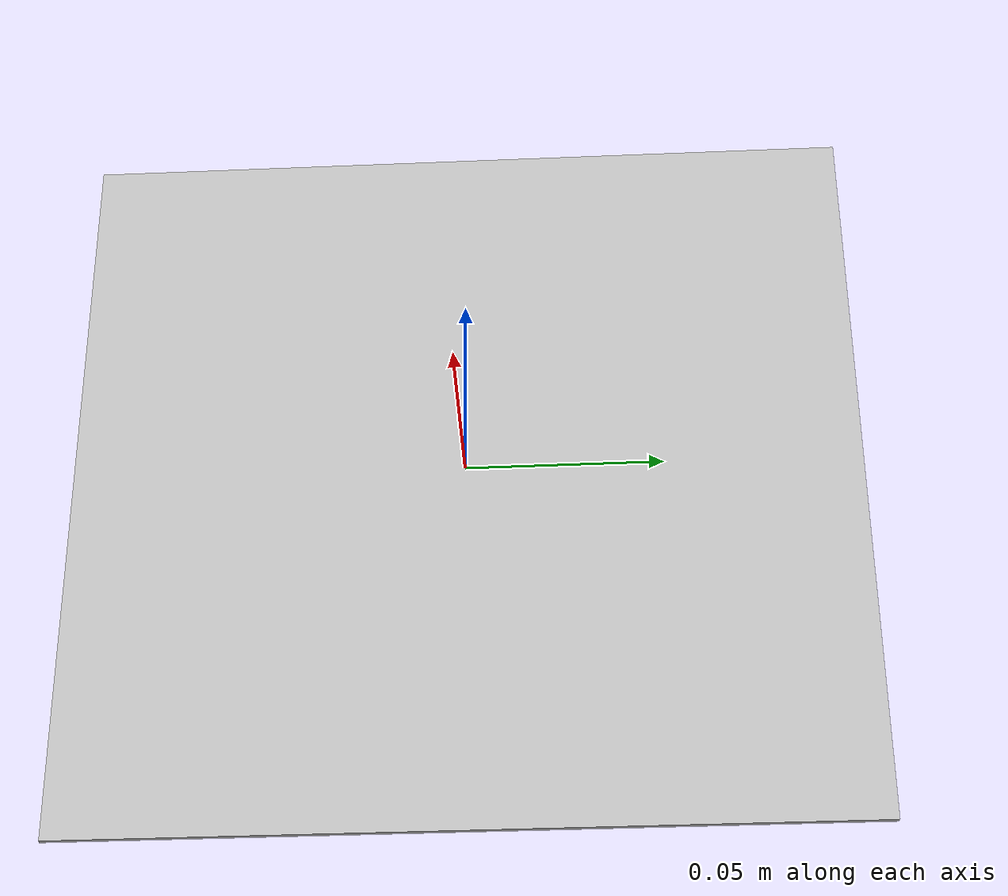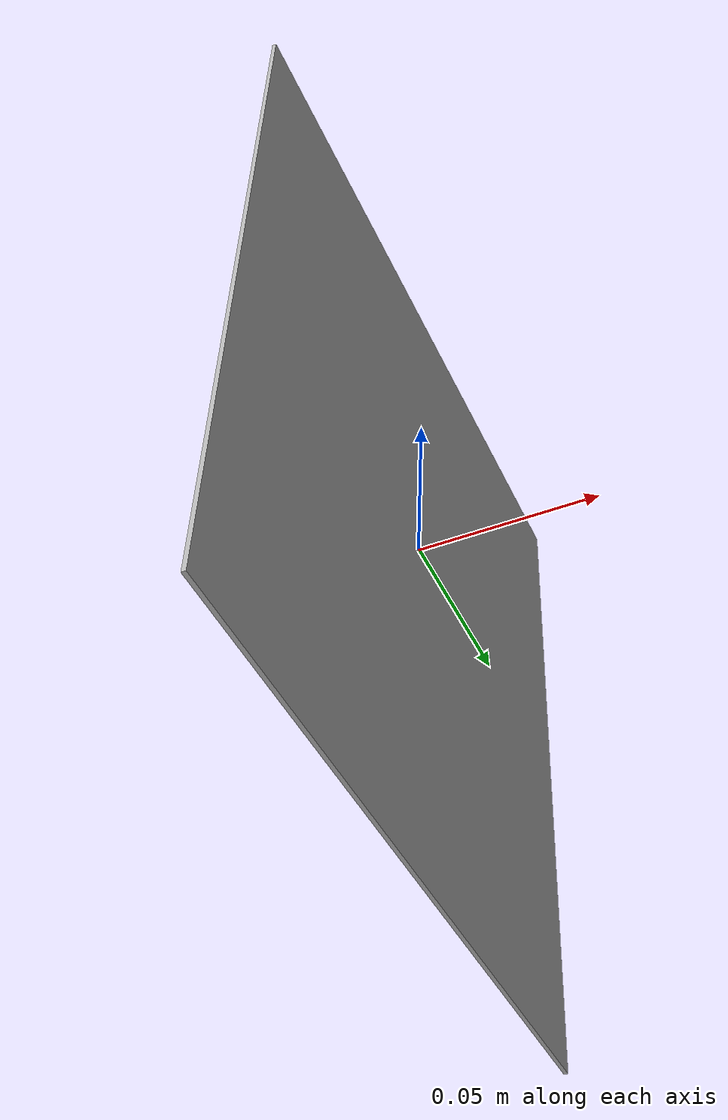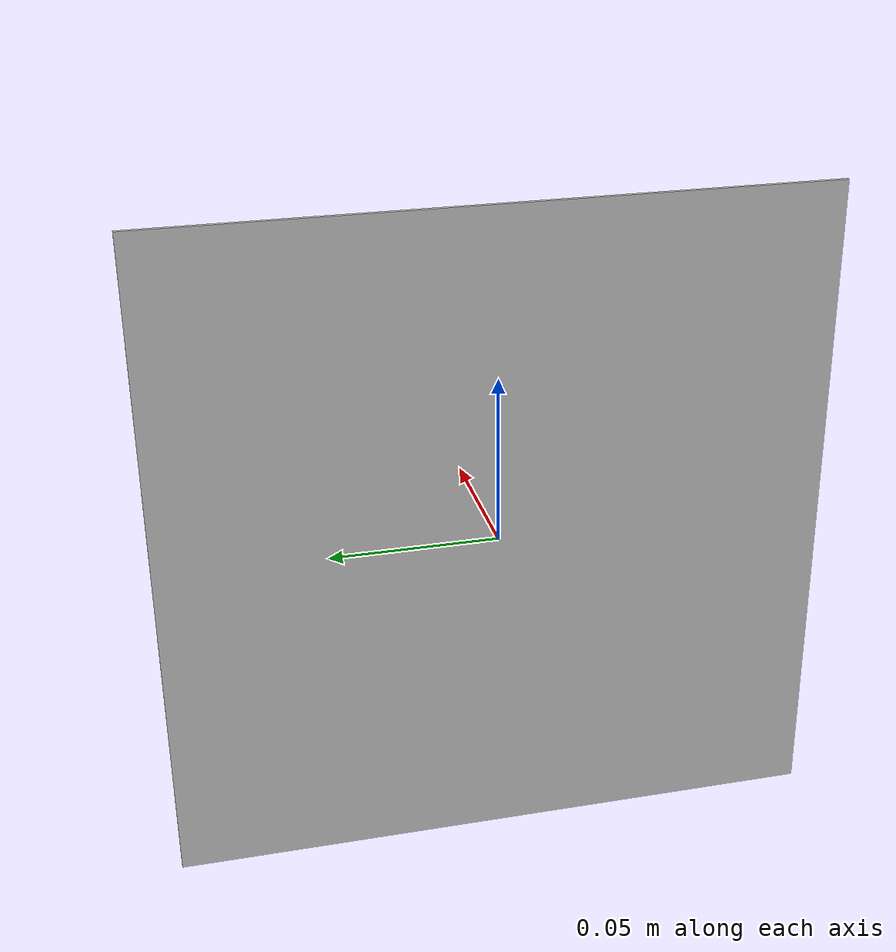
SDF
<?xml version="1.0" ?>
<sdf version="1.5">
  <model name="Ar_alvar_tag0">
    <static>true</static>
    <link name="link">
      <collision name="collision">
        <geometry>
          <mesh>
            <uri>model://complex_ar_tag/meshes/artag.dae</uri>
          </mesh>
        </geometry>
      </collision>
      <visual name="visual">
        <geometry>
          <mesh>
            <uri>model://complex_ar_tag/meshes/artag.dae</uri>
          </mesh>
        </geometry>
      </visual>
    </link>
  </model>
</sdf>
